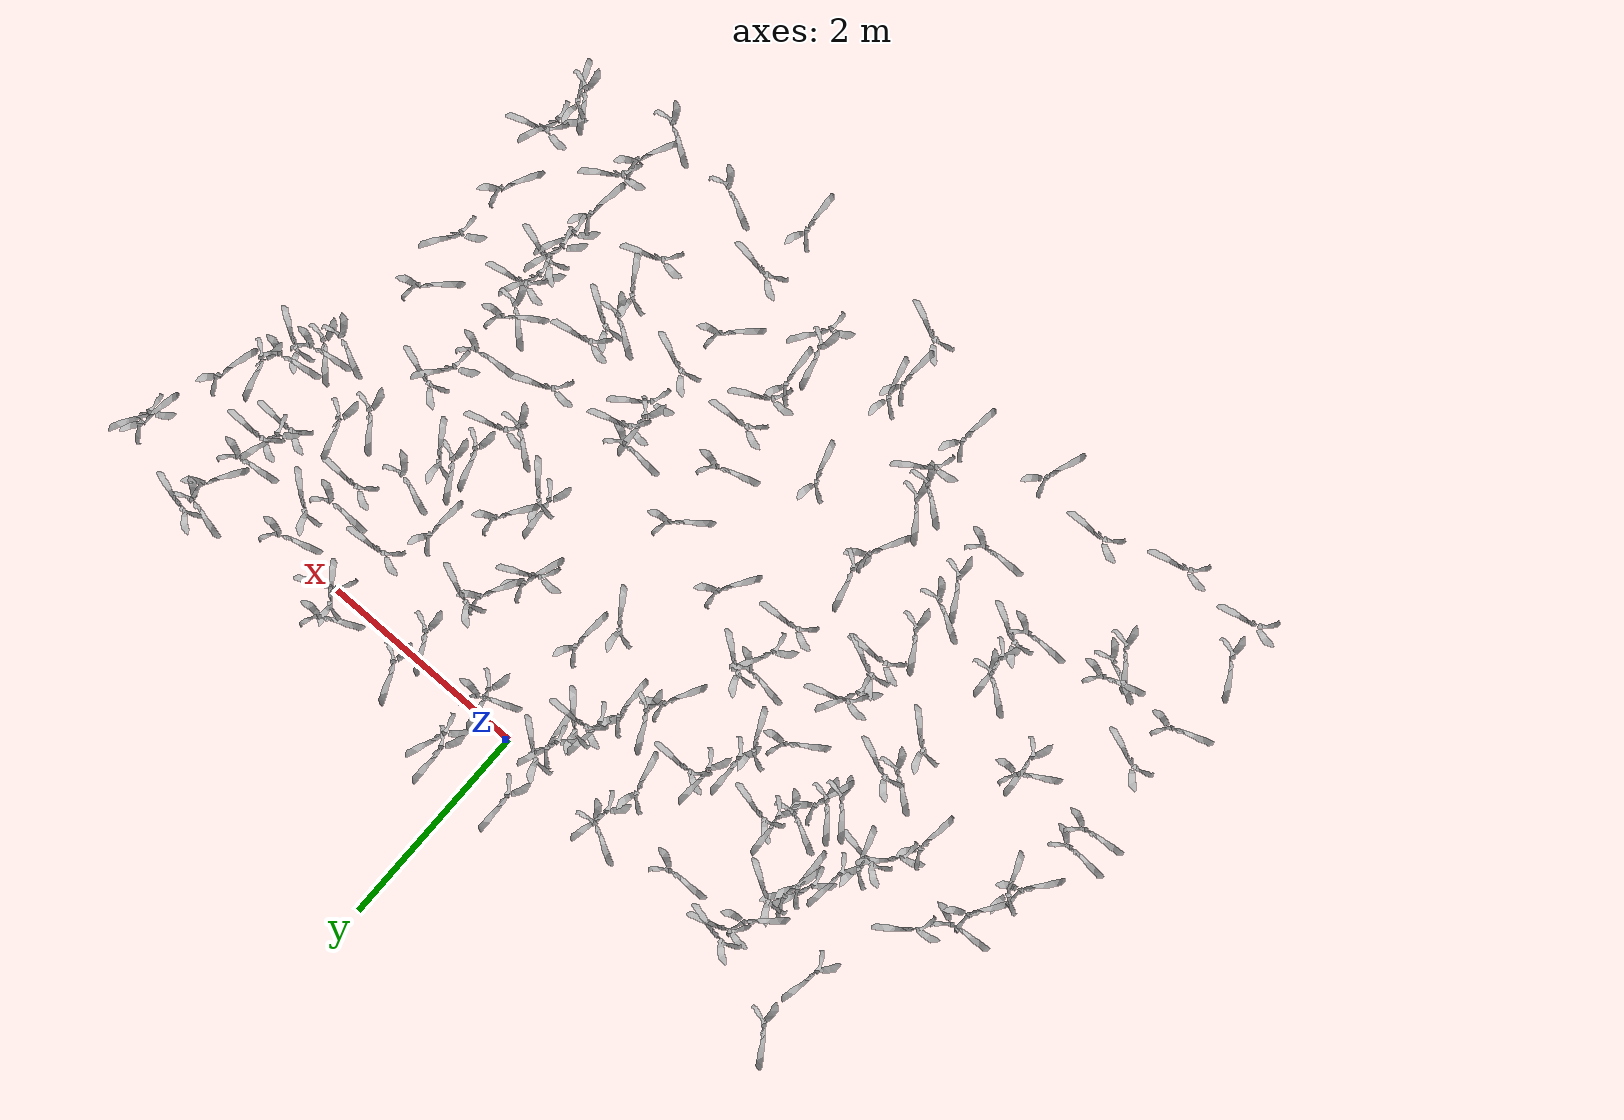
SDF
<sdf version="1.6">
 <world name="default">
  <include>
   <uri>model://maize_01</uri>
   <pose>-4.3106219414862945 -5.04937802084627 0.2977664786555406 0.0 0.0 1.009872327117621</pose>
   <name>maize_01_0000</name>
   <static>true</static>
  </include>
  <include>
   <uri>model://maize_01</uri>
   <pose>-4.2867137522594 -4.708246365392506 0.29765879354210056 0.0 0.0 2.915274614726531</pose>
   <name>maize_01_0001</name>
   <static>true</static>
  </include>
  <include>
   <uri>model://maize_01</uri>
   <pose>-4.281053319347041 -3.8794299368986604 0.2970719017235535 0.0 0.0 4.273451764508771</pose>
   <name>maize_01_0003</name>
   <static>true</static>
  </include>
  <include>
   <uri>model://maize_01</uri>
   <pose>-4.287310599381049 -3.4019237235535367 0.2964022149720307 0.0 0.0 0.4347104957143591</pose>
   <name>maize_01_0005</name>
   <static>true</static>
  </include>
  <include>
   <uri>model://maize_01</uri>
   <pose>-4.295796902444148 -2.724274799269665 0.2958788721587244 0.0 0.0 4.046131409551049</pose>
   <name>maize_01_0006</name>
   <static>true</static>
  </include>
  <include>
   <uri>model://maize_01</uri>
   <pose>-4.293580158908372 -2.5229802013675995 0.2958788721587244 0.0 0.0 3.8800439426469624</pose>
   <name>maize_01_0007</name>
   <static>true</static>
  </include>
  <include>
   <uri>model://maize_01</uri>
   <pose>-4.2254993554903475 -1.9437898647088712 0.2966477008774588 0.0 0.0 4.847441126227612</pose>
   <name>maize_01_0010</name>
   <static>true</static>
  </include>
  <include>
   <uri>model://maize_01</uri>
   <pose>-4.1835285038470404 -1.8333754207803714 0.2966477008774588 0.0 0.0 5.892835990893525</pose>
   <name>maize_01_0011</name>
   <static>true</static>
  </include>
  <include>
   <uri>model://maize_01</uri>
   <pose>-4.022818136607775 -1.4842302419656674 0.2966477008774588 0.0 0.0 4.910755848312326</pose>
   <name>maize_01_0014</name>
   <static>true</static>
  </include>
  <include>
   <uri>model://maize_01</uri>
   <pose>-3.9592921442482782 -1.338071324385545 0.2966477008774588 0.0 0.0 4.022156642924693</pose>
   <name>maize_01_0015</name>
   <static>true</static>
  </include>
  <include>
   <uri>model://maize_01</uri>
   <pose>-3.798289916580425 -1.111770347679953 0.2966477008774588 0.0 0.0 1.434338322950149</pose>
   <name>maize_01_0017</name>
   <static>true</static>
  </include>
  <include>
   <uri>model://maize_01</uri>
   <pose>-3.3695648389005837 -0.2723812203231477 0.2990067847836856 0.0 0.0 2.181242108040814</pose>
   <name>maize_01_0020</name>
   <static>true</static>
  </include>
  <include>
   <uri>model://maize_01</uri>
   <pose>-3.3132409855095895 0.3800700148087619 0.2981828816108464 0.0 0.0 2.954021962010038</pose>
   <name>maize_01_0022</name>
   <static>true</static>
  </include>
  <include>
   <uri>model://maize_01</uri>
   <pose>-3.538260925980875 -5.021662483610432 0.2967203590316047 0.0 0.0 1.0299678981490668</pose>
   <name>maize_01_0044</name>
   <static>true</static>
  </include>
  <include>
   <uri>model://maize_01</uri>
   <pose>-3.53552321622471 -4.162000822857167 0.29562531661520675 0.0 0.0 3.0065860364294803</pose>
   <name>maize_01_0045</name>
   <static>true</static>
  </include>
  <include>
   <uri>model://maize_01</uri>
   <pose>-3.531918482207313 -3.9933455633778006 0.29562531661520675 0.0 0.0 3.4749418017371942</pose>
   <name>maize_01_0046</name>
   <static>true</static>
  </include>
  <include>
   <uri>model://maize_01</uri>
   <pose>-3.542538107272777 -3.8281868389006863 0.29562531661520675 0.0 0.0 4.230603673084305</pose>
   <name>maize_01_0047</name>
   <static>true</static>
  </include>
  <include>
   <uri>model://maize_01</uri>
   <pose>-3.5526577792279395 -2.900068725105194 0.29562531661520675 0.0 0.0 2.441766853882377</pose>
   <name>maize_01_0053</name>
   <static>true</static>
  </include>
  <include>
   <uri>model://maize_01</uri>
   <pose>-3.5353557576555628 -2.6957962571806933 0.29562531661520675 0.0 0.0 4.463502437837743</pose>
   <name>maize_01_0054</name>
   <static>true</static>
  </include>
  <include>
   <uri>model://maize_01</uri>
   <pose>-3.335835348676938 -1.6375310743290308 0.29562531661520675 0.0 0.0 5.390432706229928</pose>
   <name>maize_01_0061</name>
   <static>true</static>
  </include>
  <include>
   <uri>model://maize_01</uri>
   <pose>-3.2811562548678688 -1.4942557103216776 0.29562531661520675 0.0 0.0 1.6037076923450477</pose>
   <name>maize_01_0062</name>
   <static>true</static>
  </include>
  <include>
   <uri>model://maize_01</uri>
   <pose>-3.123747730165093 -1.2653885932093727 0.29562531661520675 0.0 0.0 0.627559211468205</pose>
   <name>maize_01_0064</name>
   <static>true</static>
  </include>
  <include>
   <uri>model://maize_01</uri>
   <pose>-3.0515116640523985 -1.1473619694546942 0.29562531661520675 0.0 0.0 5.834372492273948</pose>
   <name>maize_01_0065</name>
   <static>true</static>
  </include>
  <include>
   <uri>model://maize_01</uri>
   <pose>-2.965289503134991 -1.0460428277923335 0.29562531661520675 0.0 0.0 2.258653648294244</pose>
   <name>maize_01_0066</name>
   <static>true</static>
  </include>
  <include>
   <uri>model://maize_01</uri>
   <pose>-2.8541772263172978 -0.8057247133422856 0.29562531661520675 0.0 0.0 1.9543898337898045</pose>
   <name>maize_01_0068</name>
   <static>true</static>
  </include>
  <include>
   <uri>model://maize_01</uri>
   <pose>-2.752196226297347 -0.6794381848965856 0.29562531661520675 0.0 0.0 5.5246225805519575</pose>
   <name>maize_01_0069</name>
   <static>true</static>
  </include>
  <include>
   <uri>model://maize_01</uri>
   <pose>-2.7126271128533053 -0.549616045358267 0.29562531661520675 0.0 0.0 5.256085428895383</pose>
   <name>maize_01_0070</name>
   <static>true</static>
  </include>
  <include>
   <uri>model://maize_01</uri>
   <pose>-2.6549400466816366 -0.42574120303755714 0.29562531661520675 0.0 0.0 0.25062780883100877</pose>
   <name>maize_01_0071</name>
   <static>true</static>
  </include>
  <include>
   <uri>model://maize_01</uri>
   <pose>-2.587292611984243 -0.15651339399301126 0.29562531661520675 0.0 0.0 4.6698939311208285</pose>
   <name>maize_01_0073</name>
   <static>true</static>
  </include>
  <include>
   <uri>model://maize_01</uri>
   <pose>-2.5738651612871104 -0.02563137744743063 0.29562531661520675 0.0 0.0 1.1048778762881901</pose>
   <name>maize_01_0074</name>
   <static>true</static>
  </include>
  <include>
   <uri>model://maize_01</uri>
   <pose>-2.569291240878448 0.10154498484975047 0.29562531661520675 0.0 0.0 0.5553903101164603</pose>
   <name>maize_01_0075</name>
   <static>true</static>
  </include>
  <include>
   <uri>model://maize_01</uri>
   <pose>-2.798964400070975 -4.728901577935113 0.2963914716773796 0.0 0.0 0.8106787566220299</pose>
   <name>maize_01_0109</name>
   <static>true</static>
  </include>
  <include>
   <uri>model://maize_01</uri>
   <pose>-2.805766632001518 -3.6899461198835484 0.2963914716773796 0.0 0.0 3.947043253267654</pose>
   <name>maize_01_0115</name>
   <static>true</static>
  </include>
  <include>
   <uri>model://maize_01</uri>
   <pose>-2.791025082744204 -3.531027675069019 0.2963914716773796 0.0 0.0 0.2955993628914184</pose>
   <name>maize_01_0116</name>
   <static>true</static>
  </include>
  <include>
   <uri>model://maize_01</uri>
   <pose>-2.783067807960729 -3.3784625274625792 0.2963914716773796 0.0 0.0 2.4498771285213046</pose>
   <name>maize_01_0117</name>
   <static>true</static>
  </include>
  <include>
   <uri>model://maize_01</uri>
   <pose>-2.789696186660033 -3.2200491160021687 0.2963914716773796 0.0 0.0 3.2973487120872504</pose>
   <name>maize_01_0118</name>
   <static>true</static>
  </include>
  <include>
   <uri>model://maize_01</uri>
   <pose>-2.8009565205610056 -2.297385516756142 0.2965412666649686 0.0 0.0 0.042924659762956556</pose>
   <name>maize_01_0121</name>
   <static>true</static>
  </include>
  <include>
   <uri>model://maize_01</uri>
   <pose>-2.738819103998608 -2.0394273470652684 0.2965412666649686 0.0 0.0 3.2857884913953685</pose>
   <name>maize_01_0123</name>
   <static>true</static>
  </include>
  <include>
   <uri>model://maize_01</uri>
   <pose>-2.708081434505685 -1.9094804849719786 0.2965412666649686 0.0 0.0 0.39676879773514157</pose>
   <name>maize_01_0124</name>
   <static>true</static>
  </include>
  <include>
   <uri>model://maize_01</uri>
   <pose>-2.5264795987889275 -1.5467656292137206 0.2965412666649686 0.0 0.0 3.0579781962675945</pose>
   <name>maize_01_0127</name>
   <static>true</static>
  </include>
  <include>
   <uri>model://maize_01</uri>
   <pose>-2.444564018720821 -1.4486002683070487 0.2965412666649686 0.0 0.0 3.043051343088415</pose>
   <name>maize_01_0128</name>
   <static>true</static>
  </include>
  <include>
   <uri>model://maize_01</uri>
   <pose>-2.393026826170004 -1.3219779207511053 0.2965412666649686 0.0 0.0 5.164440687180312</pose>
   <name>maize_01_0129</name>
   <static>true</static>
  </include>
  <include>
   <uri>model://maize_01</uri>
   <pose>-2.2985396233965787 -1.1717692314672912 0.2971929842640029 0.0 0.0 3.4702972293925427</pose>
   <name>maize_01_0130</name>
   <static>true</static>
  </include>
  <include>
   <uri>model://maize_01</uri>
   <pose>-2.2288614928046955 -1.0620732169063454 0.2971929842640029 0.0 0.0 2.4486771638649363</pose>
   <name>maize_01_0131</name>
   <static>true</static>
  </include>
  <include>
   <uri>model://maize_01</uri>
   <pose>-2.1642517371181826 -0.9409564305237252 0.2971929842640029 0.0 0.0 0.556910015923153</pose>
   <name>maize_01_0132</name>
   <static>true</static>
  </include>
  <include>
   <uri>model://maize_01</uri>
   <pose>-1.8060996930874265 -0.08265334749182543 0.2971929842640029 0.0 0.0 3.954166942049239</pose>
   <name>maize_01_0139</name>
   <static>true</static>
  </include>
  <include>
   <uri>model://maize_01</uri>
   <pose>-2.037356937717711 -4.800465182478748 0.296079299522224 0.0 0.0 5.153472902711048</pose>
   <name>maize_01_0176</name>
   <static>true</static>
  </include>
  <include>
   <uri>model://maize_01</uri>
   <pose>-2.035642330818669 -4.008246143426293 0.296079299522224 0.0 0.0 3.983783290727368</pose>
   <name>maize_01_0180</name>
   <static>true</static>
  </include>
  <include>
   <uri>model://maize_01</uri>
   <pose>-2.0380250806052276 -3.6635137074793525 0.296079299522224 0.0 0.0 2.908492848086323</pose>
   <name>maize_01_0182</name>
   <static>true</static>
  </include>
  <include>
   <uri>model://maize_01</uri>
   <pose>-2.0371882653121873 -3.398683349203368 0.296079299522224 0.0 0.0 3.430149211889705</pose>
   <name>maize_01_0183</name>
   <static>true</static>
  </include>
  <include>
   <uri>model://maize_01</uri>
   <pose>-2.056095528594107 -3.0783429609287367 0.296079299522224 0.0 0.0 2.930114471328311</pose>
   <name>maize_01_0185</name>
   <static>true</static>
  </include>
  <include>
   <uri>model://maize_01</uri>
   <pose>-2.0677584263007325 -2.664400531791385 0.296079299522224 0.0 0.0 0.8231132626937595</pose>
   <name>maize_01_0187</name>
   <static>true</static>
  </include>
  <include>
   <uri>model://maize_01</uri>
   <pose>-2.0337813423427056 -2.50080096665875 0.296079299522224 0.0 0.0 0.3497517580661217</pose>
   <name>maize_01_0188</name>
   <static>true</static>
  </include>
  <include>
   <uri>model://maize_01</uri>
   <pose>-2.051436012982008 -2.328540965999518 0.296079299522224 0.0 0.0 1.8661755934966946</pose>
   <name>maize_01_0189</name>
   <static>true</static>
  </include>
  <include>
   <uri>model://maize_01</uri>
   <pose>-2.0385416068054436 -2.205119301068954 0.296079299522224 0.0 0.0 1.1257227018235436</pose>
   <name>maize_01_0190</name>
   <static>true</static>
  </include>
  <include>
   <uri>model://maize_01</uri>
   <pose>-1.83890950377934 -1.561768138190445 0.296079299522224 0.0 0.0 4.526946276829346</pose>
   <name>maize_01_0195</name>
   <static>true</static>
  </include>
  <include>
   <uri>model://maize_01</uri>
   <pose>-1.691355829389867 -1.325475131707669 0.29746583524542547 0.0 0.0 5.94947431856132</pose>
   <name>maize_01_0196</name>
   <static>true</static>
  </include>
  <include>
   <uri>model://maize_01</uri>
   <pose>-1.6347914479728687 -1.2267259251499538 0.29746583524542547 0.0 0.0 2.3978092316435413</pose>
   <name>maize_01_0197</name>
   <static>true</static>
  </include>
  <include>
   <uri>model://maize_01</uri>
   <pose>-1.4981555946733949 -0.9815268897275609 0.2978907654364121 0.0 0.0 2.346884400702729</pose>
   <name>maize_01_0198</name>
   <static>true</static>
  </include>
  <include>
   <uri>model://maize_01</uri>
   <pose>-1.4064770792423416 -0.8358375654999739 0.2978907654364121 0.0 0.0 0.7886028978380181</pose>
   <name>maize_01_0199</name>
   <static>true</static>
  </include>
  <include>
   <uri>model://maize_01</uri>
   <pose>-1.1592263770593656 -0.37667630154750165 0.29770103943925713 0.0 0.0 5.73840271277332</pose>
   <name>maize_01_0202</name>
   <static>true</static>
  </include>
  <include>
   <uri>model://maize_01</uri>
   <pose>-1.0766465211874803 -0.11838151379769382 0.29770103943925713 0.0 0.0 2.15506361575753</pose>
   <name>maize_01_0204</name>
   <static>true</static>
  </include>
  <include>
   <uri>model://maize_01</uri>
   <pose>-1.0471731540748108 0.03267209809383129 0.29770103943925713 0.0 0.0 3.438296545017204</pose>
   <name>maize_01_0205</name>
   <static>true</static>
  </include>
  <include>
   <uri>model://maize_01</uri>
   <pose>-1.2804085820157127 -4.563180656179525 0.29590235500207257 0.0 0.0 5.395241899362856</pose>
   <name>maize_01_0242</name>
   <static>true</static>
  </include>
  <include>
   <uri>model://maize_01</uri>
   <pose>-1.2800712500359779 -4.251862335189655 0.29590235500207257 0.0 0.0 1.394198264005985</pose>
   <name>maize_01_0244</name>
   <static>true</static>
  </include>
  <include>
   <uri>model://maize_01</uri>
   <pose>-1.2950705056804146 -4.097692553778722 0.29590235500207257 0.0 0.0 3.281134934650724</pose>
   <name>maize_01_0245</name>
   <static>true</static>
  </include>
  <include>
   <uri>model://maize_01</uri>
   <pose>-1.313031535116563 -3.9415124170670404 0.29590235500207257 0.0 0.0 3.0001504648503694</pose>
   <name>maize_01_0246</name>
   <static>true</static>
  </include>
  <include>
   <uri>model://maize_01</uri>
   <pose>-1.3069329628613324 -3.2821441129302413 0.29590235500207257 0.0 0.0 5.015694495883181</pose>
   <name>maize_01_0250</name>
   <static>true</static>
  </include>
  <include>
   <uri>model://maize_01</uri>
   <pose>-1.2992617623044185 -3.116479382136433 0.29590235500207257 0.0 0.0 2.6340493697281713</pose>
   <name>maize_01_0251</name>
   <static>true</static>
  </include>
  <include>
   <uri>model://maize_01</uri>
   <pose>-1.293063249368452 -2.3883614056016236 0.2980741951089132 0.0 0.0 0.8616638235717357</pose>
   <name>maize_01_0255</name>
   <static>true</static>
  </include>
  <include>
   <uri>model://maize_01</uri>
   <pose>-1.2624484936386728 -2.1166297274187373 0.2980741951089132 0.0 0.0 1.8905516127639015</pose>
   <name>maize_01_0257</name>
   <static>true</static>
  </include>
  <include>
   <uri>model://maize_01</uri>
   <pose>-1.192283691249736 -1.856875570603352 0.2980741951089132 0.0 0.0 3.788098320756451</pose>
   <name>maize_01_0259</name>
   <static>true</static>
  </include>
  <include>
   <uri>model://maize_01</uri>
   <pose>-1.1460127619319997 -1.748088106887496 0.2980741951089132 0.0 0.0 0.15669133421016462</pose>
   <name>maize_01_0260</name>
   <static>true</static>
  </include>
  <include>
   <uri>model://maize_01</uri>
   <pose>-0.8208656052007306 -1.1326420935343118 0.2980741951089132 0.0 0.0 5.014500958465196</pose>
   <name>maize_01_0265</name>
   <static>true</static>
  </include>
  <include>
   <uri>model://maize_01</uri>
   <pose>-0.7468527770501685 -1.0127676385242685 0.2980741951089132 0.0 0.0 2.8490915135014325</pose>
   <name>maize_01_0266</name>
   <static>true</static>
  </include>
  <include>
   <uri>model://maize_01</uri>
   <pose>-0.6025579601264182 -0.7824202194122754 0.2980741951089132 0.0 0.0 5.545254523225686</pose>
   <name>maize_01_0268</name>
   <static>true</static>
  </include>
  <include>
   <uri>model://maize_01</uri>
   <pose>-0.5237663778298705 -0.6640728696754954 0.2980741951089132 0.0 0.0 2.256435803264442</pose>
   <name>maize_01_0269</name>
   <static>true</static>
  </include>
  <include>
   <uri>model://maize_01</uri>
   <pose>-0.4694573827493398 -0.5386795549778667 0.2980741951089132 0.0 0.0 0.8441177207310584</pose>
   <name>maize_01_0270</name>
   <static>true</static>
  </include>
  <include>
   <uri>model://maize_01</uri>
   <pose>-0.409251279057661 -0.43103615786844807 0.2980741951089132 0.0 0.0 6.26250552645099</pose>
   <name>maize_01_0271</name>
   <static>true</static>
  </include>
  <include>
   <uri>model://maize_01</uri>
   <pose>-0.3548659757521839 -0.28609927003604096 0.2980741951089132 0.0 0.0 1.9971027871010152</pose>
   <name>maize_01_0272</name>
   <static>true</static>
  </include>
  <include>
   <uri>model://maize_01</uri>
   <pose>-0.31297148360722304 -0.1626308074066201 0.2980741951089132 0.0 0.0 5.60605486878545</pose>
   <name>maize_01_0273</name>
   <static>true</static>
  </include>
  <include>
   <uri>model://maize_01</uri>
   <pose>-0.3161077779980579 -0.024136344394928316 0.2980741951089132 0.0 0.0 0.11755177830041272</pose>
   <name>maize_01_0274</name>
   <static>true</static>
  </include>
  <include>
   <uri>model://maize_01</uri>
   <pose>-0.32970329074596916 0.3419904858873879 0.2980741951089132 0.0 0.0 2.393773555222082</pose>
   <name>maize_01_0277</name>
   <static>true</static>
  </include>
  <include>
   <uri>model://maize_01</uri>
   <pose>-0.5384754639912608 -5.067289516835003 0.29734802537012744 0.0 0.0 0.3723138998509496</pose>
   <name>maize_01_0311</name>
   <static>true</static>
  </include>
  <include>
   <uri>model://maize_01</uri>
   <pose>-0.5645355800366321 -4.5885972361233005 0.29734802537012744 0.0 0.0 5.457467963302976</pose>
   <name>maize_01_0314</name>
   <static>true</static>
  </include>
  <include>
   <uri>model://maize_01</uri>
   <pose>-0.5525529923941492 -4.41396864098193 0.29734802537012744 0.0 0.0 5.772218835325074</pose>
   <name>maize_01_0315</name>
   <static>true</static>
  </include>
  <include>
   <uri>model://maize_01</uri>
   <pose>-0.5587905202653378 -3.445118525574791 0.2977097757156513 0.0 0.0 5.808318584392036</pose>
   <name>maize_01_0317</name>
   <static>true</static>
  </include>
  <include>
   <uri>model://maize_01</uri>
   <pose>-0.5285118431467952 -2.18277415802182 0.29888404200129726 0.0 0.0 4.931560564659485</pose>
   <name>maize_01_0320</name>
   <static>true</static>
  </include>
  <include>
   <uri>model://maize_01</uri>
   <pose>-0.11939909712865873 -1.3505968449950967 0.2984862012051281 0.0 0.0 6.109296820795949</pose>
   <name>maize_01_0323</name>
   <static>true</static>
  </include>
  <include>
   <uri>model://maize_01</uri>
   <pose>0.0837472966247936 -0.995230409187805 0.29829720678579147 0.0 0.0 5.442704468630226</pose>
   <name>maize_01_0324</name>
   <static>true</static>
  </include>
  <include>
   <uri>model://maize_01</uri>
   <pose>0.4017657940431254 -0.24631865214441298 0.29880351785391385 0.0 0.0 2.565142958011602</pose>
   <name>maize_01_0326</name>
   <static>true</static>
  </include>
  <include>
   <uri>model://maize_01</uri>
   <pose>0.4536182626695664 -0.12099326328731255 0.29880351785391385 0.0 0.0 4.321628640378749</pose>
   <name>maize_01_0327</name>
   <static>true</static>
  </include>
  <include>
   <uri>model://maize_01</uri>
   <pose>0.43379128000141143 0.29924030317328554 0.29880351785391385 0.0 0.0 2.008618362597867</pose>
   <name>maize_01_0330</name>
   <static>true</static>
  </include>
  <include>
   <uri>model://maize_01</uri>
   <pose>0.3802948406248967 0.4060382863086536 0.29880351785391385 0.0 0.0 2.3868585341959467</pose>
   <name>maize_01_0331</name>
   <static>true</static>
  </include>
  <include>
   <uri>model://maize_01</uri>
   <pose>0.20654496567249378 -4.563698720086001 0.2991276612406199 0.0 0.0 1.742323618467075</pose>
   <name>maize_01_0352</name>
   <static>true</static>
  </include>
  <include>
   <uri>model://maize_01</uri>
   <pose>0.18633684128090053 -4.389612200991711 0.2991276612406199 0.0 0.0 2.630046320601499</pose>
   <name>maize_01_0353</name>
   <static>true</static>
  </include>
  <include>
   <uri>model://maize_01</uri>
   <pose>0.20274988656522616 -3.915190070401967 0.2984457617101832 0.0 0.0 5.586733121383228</pose>
   <name>maize_01_0356</name>
   <static>true</static>
  </include>
  <include>
   <uri>model://maize_01</uri>
   <pose>0.18474293787067417 -3.7670939147733153 0.2984457617101832 0.0 0.0 1.2899176590988417</pose>
   <name>maize_01_0357</name>
   <static>true</static>
  </include>
  <include>
   <uri>model://maize_01</uri>
   <pose>0.19498251255593654 -3.4281366653964596 0.2982078223830002 0.0 0.0 0.8647332920321309</pose>
   <name>maize_01_0358</name>
   <static>true</static>
  </include>
  <include>
   <uri>model://maize_01</uri>
   <pose>0.1930449404539478 -2.995053472781806 0.2982078223830002 0.0 0.0 4.250910351826678</pose>
   <name>maize_01_0360</name>
   <static>true</static>
  </include>
  <include>
   <uri>model://maize_01</uri>
   <pose>0.18767564738893558 -2.3577712118431102 0.29887246608530155 0.0 0.0 4.599319493007212</pose>
   <name>maize_01_0361</name>
   <static>true</static>
  </include>
  <include>
   <uri>model://maize_01</uri>
   <pose>0.6918065554317978 -1.2648883115144731 0.29911194074011666 0.0 0.0 1.256339695371534</pose>
   <name>maize_01_0366</name>
   <static>true</static>
  </include>
  <include>
   <uri>model://maize_01</uri>
   <pose>0.7868503615200078 -1.120323634206185 0.29911194074011666 0.0 0.0 5.177257225411896</pose>
   <name>maize_01_0367</name>
   <static>true</static>
  </include>
  <include>
   <uri>model://maize_01</uri>
   <pose>0.9989920983704852 -0.7825476098136364 0.29911194074011666 0.0 0.0 5.00178853149674</pose>
   <name>maize_01_0370</name>
   <static>true</static>
  </include>
  <include>
   <uri>model://maize_01</uri>
   <pose>1.0391518489795029 -0.6588313700637232 0.29911194074011666 0.0 0.0 0.40643411764076687</pose>
   <name>maize_01_0371</name>
   <static>true</static>
  </include>
  <include>
   <uri>model://maize_01</uri>
   <pose>1.1562366235306916 -0.2669898493496332 0.29911194074011666 0.0 0.0 2.8488454676147277</pose>
   <name>maize_01_0373</name>
   <static>true</static>
  </include>
  <include>
   <uri>model://maize_01</uri>
   <pose>1.1878954285813224 0.11405326153645376 0.29963800878834257 0.0 0.0 2.76728954402455</pose>
   <name>maize_01_0374</name>
   <static>true</static>
  </include>
  <include>
   <uri>model://maize_01</uri>
   <pose>0.9472404348529746 -5.051776723698589 0.2997558965364322 0.0 0.0 5.571469050402177</pose>
   <name>maize_01_0396</name>
   <static>true</static>
  </include>
  <include>
   <uri>model://maize_01</uri>
   <pose>0.9349636103348054 -4.532362831063865 0.2992296127409701 0.0 0.0 0.6429925623250854</pose>
   <name>maize_01_0399</name>
   <static>true</static>
  </include>
  <include>
   <uri>model://maize_01</uri>
   <pose>0.9323754764906578 -3.8867810460009182 0.2992296127409701 0.0 0.0 4.705035771135606</pose>
   <name>maize_01_0403</name>
   <static>true</static>
  </include>
  <include>
   <uri>model://maize_01</uri>
   <pose>0.9515196137624267 -3.4099812057607486 0.2990923173278823 0.0 0.0 0.40677968785936813</pose>
   <name>maize_01_0406</name>
   <static>true</static>
  </include>
  <include>
   <uri>model://maize_01</uri>
   <pose>0.9647895714538455 -3.059773605368395 0.2990923173278823 0.0 0.0 1.4293387663289825</pose>
   <name>maize_01_0408</name>
   <static>true</static>
  </include>
  <include>
   <uri>model://maize_01</uri>
   <pose>0.9392173863405222 -2.9224565859595146 0.2990923173278823 0.0 0.0 2.4449182117018204</pose>
   <name>maize_01_0409</name>
   <static>true</static>
  </include>
  <include>
   <uri>model://maize_01</uri>
   <pose>0.9637142258749545 -2.7656637203737695 0.2990923173278823 0.0 0.0 1.1147511036166706</pose>
   <name>maize_01_0410</name>
   <static>true</static>
  </include>
  <include>
   <uri>model://maize_01</uri>
   <pose>0.9352607802233928 -2.6223949783651435 0.2990923173278823 0.0 0.0 3.880504734463562</pose>
   <name>maize_01_0411</name>
   <static>true</static>
  </include>
  <include>
   <uri>model://maize_01</uri>
   <pose>1.087434395943119 -1.8351979483109513 0.2990923173278823 0.0 0.0 2.4553955416966526</pose>
   <name>maize_01_0417</name>
   <static>true</static>
  </include>
  <include>
   <uri>model://maize_01</uri>
   <pose>1.1429633755798603 -1.7373825295432501 0.2990923173278823 0.0 0.0 6.2434082822134975</pose>
   <name>maize_01_0418</name>
   <static>true</static>
  </include>
  <include>
   <uri>model://maize_01</uri>
   <pose>1.3495708817055527 -1.387753873381303 0.2990923173278823 0.0 0.0 4.909239563799076</pose>
   <name>maize_01_0421</name>
   <static>true</static>
  </include>
  <include>
   <uri>model://maize_01</uri>
   <pose>1.6789838943267907 -0.8957275685230528 0.2990923173278823 0.0 0.0 5.4356397046983576</pose>
   <name>maize_01_0425</name>
   <static>true</static>
  </include>
  <include>
   <uri>model://maize_01</uri>
   <pose>1.8558430208911412 -0.517603066732802 0.2990923173278823 0.0 0.0 0.8677990167144971</pose>
   <name>maize_01_0428</name>
   <static>true</static>
  </include>
  <include>
   <uri>model://maize_01</uri>
   <pose>1.9588346883638363 -0.026857818342496814 0.2990923173278823 0.0 0.0 1.2339636617385765</pose>
   <name>maize_01_0432</name>
   <static>true</static>
  </include>
  <include>
   <uri>model://maize_01</uri>
   <pose>1.9276657057757862 0.13175433228583586 0.2990923173278823 0.0 0.0 6.1405372460992425</pose>
   <name>maize_01_0433</name>
   <static>true</static>
  </include>
  <include>
   <uri>model://maize_01</uri>
   <pose>1.9462753801748762 0.26714023015523547 0.2990923173278823 0.0 0.0 4.384337897349559</pose>
   <name>maize_01_0434</name>
   <static>true</static>
  </include>
  <include>
   <uri>model://maize_01</uri>
   <pose>1.7158602193707144 -4.907285272262113 0.2983002477079753 0.0 0.0 3.488306678283371</pose>
   <name>maize_01_0469</name>
   <static>true</static>
  </include>
  <include>
   <uri>model://maize_01</uri>
   <pose>1.7023040754661352 -4.0519116631097924 0.29859671603779786 0.0 0.0 1.1540667016418376</pose>
   <name>maize_01_0474</name>
   <static>true</static>
  </include>
  <include>
   <uri>model://maize_01</uri>
   <pose>1.708909991737804 -3.6154417358819977 0.29859671603779786 0.0 0.0 6.083036607028033</pose>
   <name>maize_01_0477</name>
   <static>true</static>
  </include>
  <include>
   <uri>model://maize_01</uri>
   <pose>1.7110376944668226 -3.4362584984061435 0.29859671603779786 0.0 0.0 3.3493126066193653</pose>
   <name>maize_01_0478</name>
   <static>true</static>
  </include>
  <include>
   <uri>model://maize_01</uri>
   <pose>1.7030874197195398 -3.26543472213805 0.29859671603779786 0.0 0.0 0.21884308056935906</pose>
   <name>maize_01_0479</name>
   <static>true</static>
  </include>
  <include>
   <uri>model://maize_01</uri>
   <pose>1.7047394886632075 -3.0942114053696312 0.29859671603779786 0.0 0.0 0.9842123770876039</pose>
   <name>maize_01_0480</name>
   <static>true</static>
  </include>
  <include>
   <uri>model://maize_01</uri>
   <pose>1.6839096168126086 -2.5753248905537847 0.29859671603779786 0.0 0.0 1.1840500648350483</pose>
   <name>maize_01_0483</name>
   <static>true</static>
  </include>
  <include>
   <uri>model://maize_01</uri>
   <pose>1.7226194213339576 -2.137319433840179 0.29859671603779786 0.0 0.0 3.2724183155194813</pose>
   <name>maize_01_0486</name>
   <static>true</static>
  </include>
  <include>
   <uri>model://maize_01</uri>
   <pose>1.7600067388408733 -2.0328983562020153 0.29859671603779786 0.0 0.0 1.0993732128003204</pose>
   <name>maize_01_0487</name>
   <static>true</static>
  </include>
  <include>
   <uri>model://maize_01</uri>
   <pose>1.8702698296174851 -1.7539548296712801 0.29859671603779786 0.0 0.0 2.685026493876858</pose>
   <name>maize_01_0489</name>
   <static>true</static>
  </include>
  <include>
   <uri>model://maize_01</uri>
   <pose>1.9638389096675526 -1.5491714169389523 0.29859671603779786 0.0 0.0 2.9102088959014556</pose>
   <name>maize_01_0491</name>
   <static>true</static>
  </include>
  <include>
   <uri>model://maize_01</uri>
   <pose>2.0296170913481038 -1.424410378648665 0.29859671603779786 0.0 0.0 6.104114814194359</pose>
   <name>maize_01_0492</name>
   <static>true</static>
  </include>
  <include>
   <uri>model://maize_01</uri>
   <pose>2.212035750052802 -1.1537898636437516 0.29859671603779786 0.0 0.0 3.5812534560723948</pose>
   <name>maize_01_0494</name>
   <static>true</static>
  </include>
  <include>
   <uri>model://maize_01</uri>
   <pose>2.4119275707099503 -0.7981770250068518 0.2993261623700157 0.0 0.0 0.7780822538201351</pose>
   <name>maize_01_0497</name>
   <static>true</static>
  </include>
  <include>
   <uri>model://maize_01</uri>
   <pose>2.5318721696580115 -0.5613050175246983 0.2993261623700157 0.0 0.0 3.907885891885939</pose>
   <name>maize_01_0499</name>
   <static>true</static>
  </include>
  <include>
   <uri>model://maize_01</uri>
   <pose>2.6227463924390615 -0.331836188804296 0.2993261623700157 0.0 0.0 0.10863058133190917</pose>
   <name>maize_01_0501</name>
   <static>true</static>
  </include>
  <include>
   <uri>model://maize_01</uri>
   <pose>2.6813548739706827 -0.04516275485871926 0.2993261623700157 0.0 0.0 4.230267861167907</pose>
   <name>maize_01_0503</name>
   <static>true</static>
  </include>
  <include>
   <uri>model://maize_01</uri>
   <pose>2.45097958631682 -5.01020514878702 0.2981132069050913 0.0 0.0 3.367062346907721</pose>
   <name>maize_01_0541</name>
   <static>true</static>
  </include>
  <include>
   <uri>model://maize_01</uri>
   <pose>2.4670401618431446 -4.5508596866005 0.2981132069050913 0.0 0.0 5.054082265239908</pose>
   <name>maize_01_0544</name>
   <static>true</static>
  </include>
  <include>
   <uri>model://maize_01</uri>
   <pose>2.453963578069071 -4.386320699449233 0.2981132069050913 0.0 0.0 1.3952242281293326</pose>
   <name>maize_01_0545</name>
   <static>true</static>
  </include>
  <include>
   <uri>model://maize_01</uri>
   <pose>2.4622101527956004 -3.9251979453222243 0.2981132069050913 0.0 0.0 5.369621533923257</pose>
   <name>maize_01_0548</name>
   <static>true</static>
  </include>
  <include>
   <uri>model://maize_01</uri>
   <pose>2.4454908103732236 -3.732723427704841 0.2981132069050913 0.0 0.0 1.9471153069911378</pose>
   <name>maize_01_0549</name>
   <static>true</static>
  </include>
  <include>
   <uri>model://maize_01</uri>
   <pose>2.448054825373968 -3.577844922863172 0.2981132069050913 0.0 0.0 2.0325145825299114</pose>
   <name>maize_01_0550</name>
   <static>true</static>
  </include>
  <include>
   <uri>model://maize_01</uri>
   <pose>2.4495229588883496 -3.375032192143759 0.2981132069050913 0.0 0.0 0.49981000662689273</pose>
   <name>maize_01_0551</name>
   <static>true</static>
  </include>
  <include>
   <uri>model://maize_01</uri>
   <pose>2.4345128078552256 -3.2583452085381954 0.2981132069050913 0.0 0.0 1.9148789227201135</pose>
   <name>maize_01_0552</name>
   <static>true</static>
  </include>
  <include>
   <uri>model://maize_01</uri>
   <pose>2.4645255720789137 -3.1057276387452917 0.2981132069050913 0.0 0.0 0.9904818316400174</pose>
   <name>maize_01_0553</name>
   <static>true</static>
  </include>
  <include>
   <uri>model://maize_01</uri>
   <pose>2.4435852675904433 -2.919707147666314 0.2992520727006993 0.0 0.0 3.189648107168526</pose>
   <name>maize_01_0554</name>
   <static>true</static>
  </include>
  <include>
   <uri>model://maize_01</uri>
   <pose>2.465012510828798 -2.7540264266258987 0.2992520727006993 0.0 0.0 4.539630589499997</pose>
   <name>maize_01_0555</name>
   <static>true</static>
  </include>
  <include>
   <uri>model://maize_01</uri>
   <pose>2.440714291988567 -2.3894700918200833 0.2992520727006993 0.0 0.0 4.032113671152719</pose>
   <name>maize_01_0557</name>
   <static>true</static>
  </include>
  <include>
   <uri>model://maize_01</uri>
   <pose>2.4614179868852166 -2.162823557180681 0.2992520727006993 0.0 0.0 1.7102956834308858</pose>
   <name>maize_01_0559</name>
   <static>true</static>
  </include>
  <include>
   <uri>model://maize_01</uri>
   <pose>2.5340368724573215 -1.8833448008801186 0.2992520727006993 0.0 0.0 0.48408908263207867</pose>
   <name>maize_01_0561</name>
   <static>true</static>
  </include>
  <include>
   <uri>model://maize_01</uri>
   <pose>2.7915285970481034 -1.395975968496124 0.2992520727006993 0.0 0.0 3.02072597745588</pose>
   <name>maize_01_0565</name>
   <static>true</static>
  </include>
  <include>
   <uri>model://maize_01</uri>
   <pose>2.9385177660548307 -1.167611224139556 0.2992520727006993 0.0 0.0 2.690465232374445</pose>
   <name>maize_01_0567</name>
   <static>true</static>
  </include>
  <include>
   <uri>model://maize_01</uri>
   <pose>3.1636481506829583 -0.790190562920966 0.2992520727006993 0.0 0.0 0.7591719380608121</pose>
   <name>maize_01_0570</name>
   <static>true</static>
  </include>
  <include>
   <uri>model://maize_01</uri>
   <pose>3.24122217033563 -0.707644490183535 0.2992520727006993 0.0 0.0 2.0663743212243153</pose>
   <name>maize_01_0571</name>
   <static>true</static>
  </include>
  <include>
   <uri>model://maize_01</uri>
   <pose>3.307516735467676 -0.5742718998593273 0.2992520727006993 0.0 0.0 0.7836566612458834</pose>
   <name>maize_01_0572</name>
   <static>true</static>
  </include>
  <include>
   <uri>model://maize_01</uri>
   <pose>3.3954281166661127 -0.3192864251274463 0.2992429750567116 0.0 0.0 4.070852072715794</pose>
   <name>maize_01_0574</name>
   <static>true</static>
  </include>
  <include>
   <uri>model://maize_01</uri>
   <pose>3.4609323026400074 0.05558010189978255 0.2992429750567116 0.0 0.0 4.9378712675029925</pose>
   <name>maize_01_0577</name>
   <static>true</static>
  </include>
  <include>
   <uri>model://maize_01</uri>
   <pose>3.4475653371699466 0.21909333100801007 0.2992429750567116 0.0 0.0 3.675900154701599</pose>
   <name>maize_01_0578</name>
   <static>true</static>
  </include>
  <include>
   <uri>model://maize_01</uri>
   <pose>3.430420746083239 0.3496700416404168 0.2992429750567116 0.0 0.0 0.5060818024186614</pose>
   <name>maize_01_0579</name>
   <static>true</static>
  </include>
  <include>
   <uri>model://maize_01</uri>
   <pose>3.2173103234846567 -4.744863503719747 0.29777006547564305 0.0 0.0 2.9321557107462293</pose>
   <name>maize_01_0616</name>
   <static>true</static>
  </include>
  <include>
   <uri>model://maize_01</uri>
   <pose>3.184379782330083 -4.584392491292817 0.29777006547564305 0.0 0.0 5.9369104505121735</pose>
   <name>maize_01_0617</name>
   <static>true</static>
  </include>
  <include>
   <uri>model://maize_01</uri>
   <pose>3.201370893901784 -4.381797994048822 0.29777006547564305 0.0 0.0 1.955278400354349</pose>
   <name>maize_01_0618</name>
   <static>true</static>
  </include>
  <include>
   <uri>model://maize_01</uri>
   <pose>3.203394745030947 -4.24405107997414 0.29777006547564305 0.0 0.0 1.1275644638026692</pose>
   <name>maize_01_0619</name>
   <static>true</static>
  </include>
  <include>
   <uri>model://maize_01</uri>
   <pose>3.2002373674602818 -3.5802538412325107 0.29768879370177975 0.0 0.0 5.004209364657426</pose>
   <name>maize_01_0623</name>
   <static>true</static>
  </include>
  <include>
   <uri>model://maize_01</uri>
   <pose>3.18428922587688 -3.082647674648317 0.29768879370177975 0.0 0.0 1.7739672243764257</pose>
   <name>maize_01_0626</name>
   <static>true</static>
  </include>
  <include>
   <uri>model://maize_01</uri>
   <pose>3.1914017590372254 -2.4697674057157704 0.2977285636911557 0.0 0.0 4.675650017568439</pose>
   <name>maize_01_0630</name>
   <static>true</static>
  </include>
  <include>
   <uri>model://maize_01</uri>
   <pose>3.408626614344873 -1.7073601754526087 0.2977285636911557 0.0 0.0 3.4850126775084895</pose>
   <name>maize_01_0636</name>
   <static>true</static>
  </include>
  <include>
   <uri>model://maize_01</uri>
   <pose>3.4936484721037373 -1.5905122244561973 0.2977285636911557 0.0 0.0 3.1076167737608</pose>
   <name>maize_01_0637</name>
   <static>true</static>
  </include>
  <include>
   <uri>model://maize_01</uri>
   <pose>3.5503272515110598 -1.46762752779117 0.2977285636911557 0.0 0.0 4.099386935667434</pose>
   <name>maize_01_0638</name>
   <static>true</static>
  </include>
  <include>
   <uri>model://maize_01</uri>
   <pose>3.611007084001763 -1.352731065601511 0.2977285636911557 0.0 0.0 0.2201618275558215</pose>
   <name>maize_01_0639</name>
   <static>true</static>
  </include>
  <include>
   <uri>model://maize_01</uri>
   <pose>3.710607869638537 -1.2338709726205639 0.2977285636911557 0.0 0.0 4.106496270211515</pose>
   <name>maize_01_0640</name>
   <static>true</static>
  </include>
  <include>
   <uri>model://maize_01</uri>
   <pose>3.7869608629521694 -1.1200637801755693 0.2977285636911557 0.0 0.0 2.653410490438154</pose>
   <name>maize_01_0641</name>
   <static>true</static>
  </include>
  <include>
   <uri>model://maize_01</uri>
   <pose>3.9786714347020777 -0.7339466345469126 0.2977285636911557 0.0 0.0 5.245629532925738</pose>
   <name>maize_01_0644</name>
   <static>true</static>
  </include>
  <include>
   <uri>model://maize_01</uri>
   <pose>4.203344111344557 -0.12145591425626481 0.2977285636911557 0.0 0.0 1.8657336114137837</pose>
   <name>maize_01_0649</name>
   <static>true</static>
  </include>
  <include>
   <uri>model://maize_01</uri>
   <pose>4.210190818870944 0.018348594544179447 0.2977285636911557 0.0 0.0 5.335853795850997</pose>
   <name>maize_01_0650</name>
   <static>true</static>
  </include>
 </world>
</sdf>
